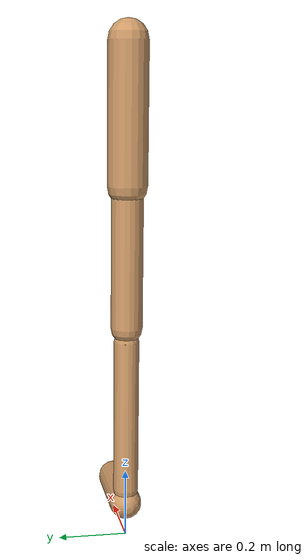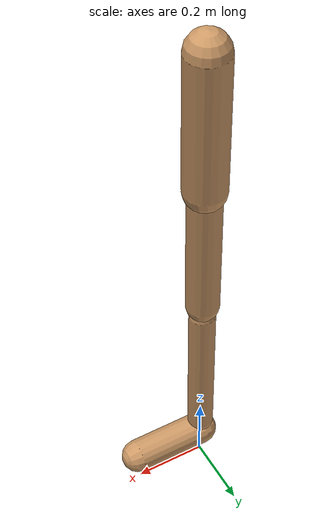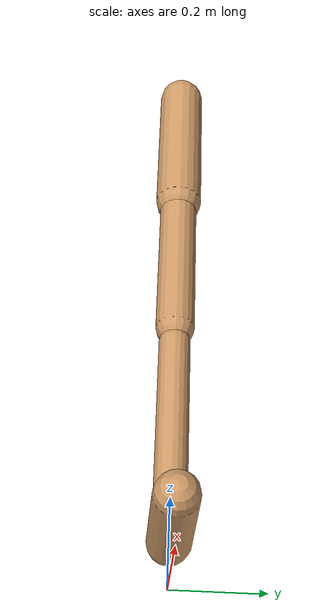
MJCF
<mujoco model="walker2d">
  <compiler angle="degree" coordinate="global" inertiafromgeom="true" />
  <default>
    <joint armature="0.01" damping=".1" limited="true" />
    <geom conaffinity="0" condim="3" contype="1" density="1000" friction="0.8 .1 .1" rgba="0.8 0.6 .4 1" />
  </default>
  <option integrator="RK4" timestep="0.002" />
  <worldbody>

    <body name="torso" pos="0 0 -0.08577142422064908">
      <joint armature="0" axis="1 0 0" damping="0" limited="false" name="ignorex" pos="0 0 0" stiffness="0" type="slide" />
      <joint armature="0" axis="0 0 1" damping="0" limited="false" name="ignorez" pos="0 0 0" ref="1.25" stiffness="0" type="slide" />
      <joint armature="0" axis="0 1 0" damping="0" limited="false" name="ignorey" pos="0 0 0" stiffness="0" type="hinge" />
      <geom fromto="0 0 1.45 0 0 1.05" name="torso_geom" size="0.05784613611654556" type="capsule" />
      <body name="thigh">
        <joint axis="0 -1 0" name="thigh_joint" pos="0 0 1.05" range="-150 0" type="hinge" />
        <geom fromto="0.0 0.0 1.05 0.0 0.0 0.6406285693676759" name="thigh_geom" size="0.04599700132880963" type="capsule" />
        <body name="leg" pos="0.0 0.0 0.04062856936767589">
          <joint axis="0 -1 0" name="leg_joint" pos="0 0 0.6" range="-150 0" type="hinge" />
          <geom fromto="0.0 0.0 0.6 0.0 0.0 0.1451428548529732" name="leg_geom" size="0.0367976010630477" type="capsule" />
          <body name="foot" pos="0.0 0.0 0.0451428548529732">
            <joint axis="0 -1 0" name="foot_joint" pos="0 0 0.1" range="-45 45" type="hinge" />
            <geom fromto="-0.0 0.0 0.1 0.20644254875094747 0.0 0.1" name="foot_geom" size="0.04713739060937054" type="capsule" />
          </body>
        </body>
      </body>

      <body name="thigh_left">
        <joint axis="0 -1 0" name="thigh_left_joint" pos="0 0 1.05" range="-150 0" type="hinge" />
        <geom fromto="0.0 0.0 1.05 0.0 0.0 0.6406285693676759" name="thigh_left_geom" rgba=".7 .3 .6 1" size="0.04599700132880963" type="capsule" />
        <body name="leg_left" pos="0.0 0.0 0.04062856936767589">
          <joint axis="0 -1 0" name="leg_left_joint" pos="0 0 0.6" range="-150 0" type="hinge" />
          <geom fromto="0.0 0.0 0.6 0.0 0.0 0.1451428548529732" name="leg_left_geom" rgba=".7 .3 .6 1" size="0.0367976010630477" type="capsule" />
          <body name="foot_left" pos="0.0 0.0 0.0451428548529732">
            <joint axis="0 -1 0" name="foot_left_joint" pos="0 0 0.1" range="-45 45" type="hinge" />
            <geom fromto="-0.0 0.0 0.1 0.20644254875094747 0.0 0.1" name="foot_left_geom" rgba=".7 .3 .6 1" size="0.04713739060937054" type="capsule" />
          </body>
        </body>
      </body>
    </body>
  </worldbody>
  <actuator>

    <motor ctrllimited="true" ctrlrange="-1.0 1.0" gear="100" joint="thigh_joint" />
    <motor ctrllimited="true" ctrlrange="-1.0 1.0" gear="100" joint="leg_joint" />
    <motor ctrllimited="true" ctrlrange="-1.0 1.0" gear="100" joint="foot_joint" />
    <motor ctrllimited="true" ctrlrange="-1.0 1.0" gear="100" joint="thigh_left_joint" />
    <motor ctrllimited="true" ctrlrange="-1.0 1.0" gear="100" joint="leg_left_joint" />
    <motor ctrllimited="true" ctrlrange="-1.0 1.0" gear="100" joint="foot_left_joint" />

  </actuator>
</mujoco>
